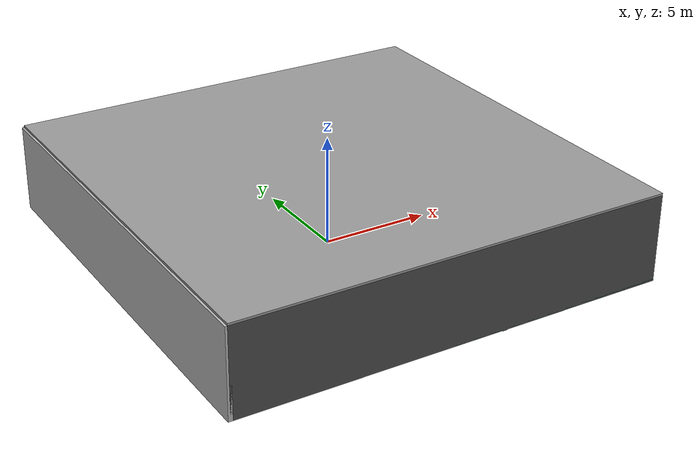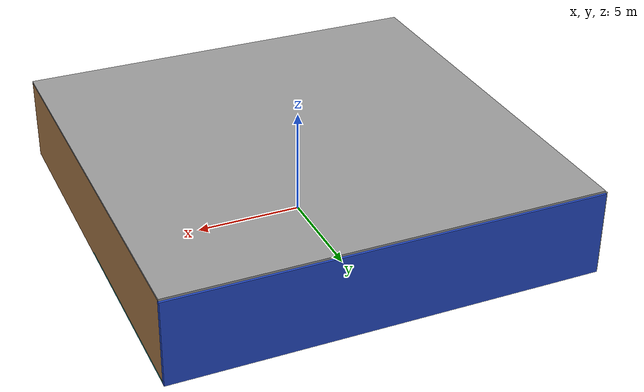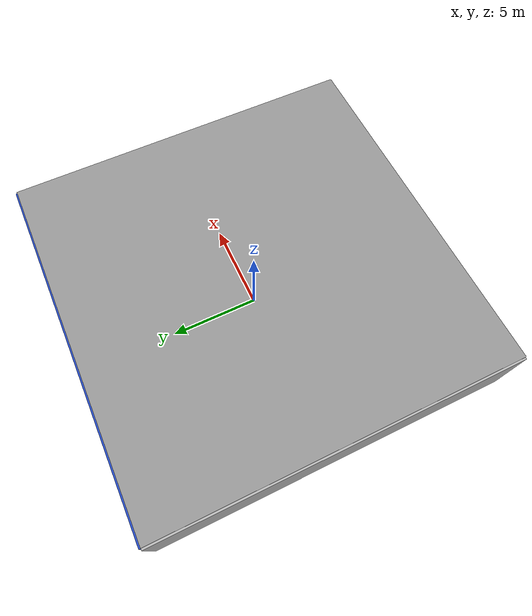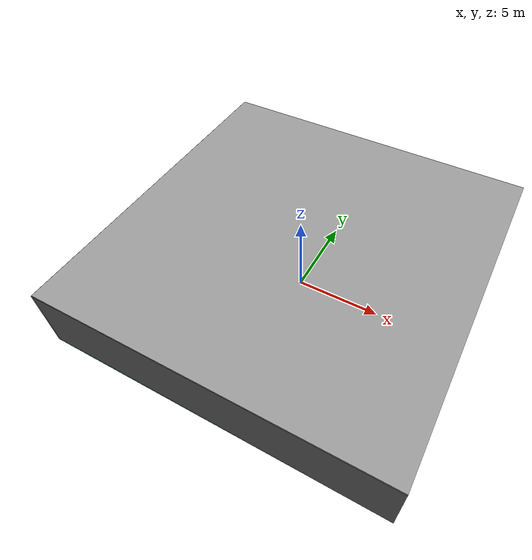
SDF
<sdf version="1.4">
 <world name="default">
  <physics type="ode">
   <max_step_size>0.001</max_step_size>
   <real_time_factor>1</real_time_factor>
   <real_time_update_rate>1000</real_time_update_rate>
   <gravity>0 0 -9.8</gravity>
  </physics>
  <scene><ambient>0.4 0.4 0.4 1</ambient><background>0.7 0.7 0.7 1</background><shadows>1</shadows></scene>
  <model name="Surrounding">
   <static>1</static>
   <link name="Ceiling">
    <collision name="Ceiling_Collision"><geometry><box><size>20 20 0.1</size></box></geometry></collision>
    <visual name="Ceiling_Visual">
     <geometry><box><size>20 20 0.1</size></box></geometry>
     <material>
      <script><uri>file://media/materials/scripts/gazebo.material</uri><name>Gazebo/GreyGradientSky</name></script>
     </material>
    </visual>
    <pose>0 0 4.05 0 0 0</pose>
   </link>
   <link name="Wall_South">
    <collision name="Wall_South_Collision">
     <geometry><box><size>20 0 4</size></box></geometry>
     <pose>0 0 2 0 -0 0</pose>
    </collision>
    <visual name="Wall_South_Visual">
     <pose>0 0 2 0 -0 0</pose>
     <geometry><box><size>20 0 4</size></box></geometry>
     <material>
      <script><uri>file://media/materials/scripts/gazebo.material</uri><name>Gazebo/Road</name></script>
     </material>
    </visual>
    <velocity_decay><linear>0</linear><angular>0</angular></velocity_decay>
    <pose>0 -10 0 0 -0 0</pose>
   </link>
   <link name="Wall_East">
    <collision name="Wall_21_Collision">
     <geometry><box><size>20 0 4</size></box></geometry>
     <pose>0 0 2 0 -0 0</pose>
    </collision>
    <visual name="Wall_21_Visual">
     <pose>0 0 2 0 -0 0</pose>
     <geometry><box><size>20 0 4</size></box></geometry>
     <material>
      <script><uri>file://media/materials/scripts/gazebo.material</uri><name>Gazebo/WoodFloor</name></script>
     </material>
    </visual>
    <velocity_decay><linear>0</linear><angular>0</angular></velocity_decay>
    <pose>10 0 0 0 -0 1.5708</pose>
   </link>
   <link name="Wall_North">
    <collision name="Wall_22_Collision">
     <geometry><box><size>20 0.2 4</size></box></geometry>
     <pose>0 0 2 0 -0 0</pose>
    </collision>
    <visual name="Wall_22_Visual">
     <pose>0 0 2 0 -0 0</pose>
     <geometry><box><size>20 0.2 4</size></box></geometry>
     <material>
      <script><uri>file://media/materials/scripts/gazebo.material</uri><name>Gazebo/BlueLaser</name></script>
     </material>
    </visual>
    <velocity_decay><linear>0</linear><angular>0</angular></velocity_decay>
    <pose>0 10 0 0 -0 0</pose>
   </link>
   <link name="Wall_West">
    <collision name="Wall_23_Collision">
     <geometry><box><size>20 0.2 4</size></box></geometry>
     <pose>0 0 2 0 -0 0</pose>
    </collision>
    <visual name="Wall_23_Visual">
     <pose>0 0 2 0 -0 0</pose>
     <geometry><box><size>20 0.2 4</size></box></geometry>
     <material>
      <script><uri>file://media/materials/scripts/gazebo.material</uri><name>Gazebo/LightOn</name></script>
     </material>
    </visual>
    <velocity_decay><linear>0</linear><angular>0</angular></velocity_decay>
    <pose>-10 0 0 0 0 -1.5708</pose>
   </link>
   <link name="Ground_link">
    <collision name="collision">
     <pose>0 0 .05 0 -0 0</pose>
     <geometry><box><size>20 20 0.1</size></box></geometry>
    </collision>
    <visual name="visual">
     <pose>0 0 .05 0 -0 0</pose>
     <geometry><box><size>20 20 0.1</size></box></geometry>
     <material>
      <script>
       <uri>file://media/materials/scripts/gazebo.material</uri>
       <name>Gazebo/TurquoiseGlowOutline</name>
      </script>
     </material>
    </visual>
   </link>
   <static>1</static>
  </model>
  <spherical_coordinates>
   <surface_model>EARTH_WGS84</surface_model>
   <latitude_deg>0</latitude_deg>
   <longitude_deg>0</longitude_deg>
   <elevation>0</elevation>
   <heading_deg>0</heading_deg>
  </spherical_coordinates>
  <light name="lightball_0" type="diffuse">
   <diffuse>0.8 0.8 0.8 1</diffuse>
   <specular>0.2 0.2 0.2 1</specular>
   <attenuation>
    <range>100</range>
    <constant>0.7</constant>
    <linear>0.01</linear>
    <quadratic>0.001</quadratic>
   </attenuation>
   <direction>-0.5 0.1 -0.9</direction>
   <pose>8.55789200658 -6.71943965495 2.8014322555 0 0 0</pose>
  </light>
  <light name="lightball_1" type="diffuse">
   <diffuse>0.8 0.8 0.8 1</diffuse>
   <specular>0.2 0.2 0.2 1</specular>
   <attenuation>
    <range>100</range>
    <constant>0.7</constant>
    <linear>0.01</linear>
    <quadratic>0.001</quadratic>
   </attenuation>
   <direction>-0.5 0.1 -0.9</direction>
   <pose>5.91047448529 -5.93332591308 0.960865421826 0 0 0</pose>
  </light>
  <light name="lightball_2" type="diffuse">
   <diffuse>0.8 0.8 0.8 1</diffuse>
   <specular>0.2 0.2 0.2 1</specular>
   <attenuation>
    <range>100</range>
    <constant>0.7</constant>
    <linear>0.01</linear>
    <quadratic>0.001</quadratic>
   </attenuation>
   <direction>-0.5 0.1 -0.9</direction>
   <pose>7.1742361776 -5.94210726335 0.572375367259 0 0 0</pose>
  </light>
  <include>
   <uri>model://construction_cone</uri>
   <pose>-1.45814287967 -1.49181833891 0 0 0 0.480075959744</pose>
  </include>
  <include>
   <uri>model://construction_cone</uri>
   <pose>-1.05991222461 0.731663091249 0 0 0 1.22346411803</pose>
  </include>
  <include>
   <uri>model://textured_shapes</uri>
   <pose>-0.749189207155 6.93232367546 0 0 0 0.798820897438</pose>
  </include>
  <include><uri>model://table</uri><pose>0.799823576034 4.15067367043 0 0 0 1.88171813076</pose></include>
  <include>
   <uri>model://textured_shapes</uri>
   <pose>3.70452350096 -7.73497629922 0 0 0 2.4581486309</pose>
  </include>
  <include><uri>model://cabinet</uri><pose>7.16528273229 -7.64009812014 0 0 0 2.47630329933</pose></include>
  <include>
   <uri>model://textured_shapes</uri>
   <pose>6.7925638664 -5.5765897723 0 0 0 1.65709154656</pose>
  </include>
  <include>
   <uri>model://construction_cone</uri>
   <pose>6.75627538267 -0.643721537613 0 0 0 2.07527151901</pose>
  </include>
 </world>
</sdf>

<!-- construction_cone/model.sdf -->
<sdf version="1.5">
  <model name="Construction Cone">
    <link name="link">
      <collision name="collision">
        <geometry>
          <mesh>
            <scale>10 10 10</scale>
            <uri>file://isr-testbed/construction_cone/meshes/construction_cone.dae</uri>
          </mesh>
        </geometry>
      </collision>
      <visual name="visual">
        <geometry>
          <mesh>
            <scale>10 10 10</scale>
            <uri>file://isr-testbed/construction_cone/meshes/construction_cone.dae</uri>
          </mesh>
        </geometry>
      </visual>
    </link>
  </model>
</sdf>

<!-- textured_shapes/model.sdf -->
<sdf version="1.6">
  <model name="textured_shapes">
    <pose>0 0 0.5 0 0 0</pose>
    <link name="box">
      <pose>0 -1.5 0 0 0 0</pose>
      <collision name="collision">
        <geometry>
          <box>
            <size>1 1 1</size>
          </box>
        </geometry>
      </collision>
      <visual name="visual">
        <geometry>
          <box>
            <size>1 1 1</size>
          </box>
        </geometry>
        <material>
          <script>
            <uri>model://../model_source/models/textured_shapes/materials/scripts</uri>
            <uri>model://../model_source/models/textured_shapes/materials/textures</uri>
            <name>TexturedShape/Squares</name>
          </script>
        </material>
      </visual>
    </link>
    <link name="sphere">
      <collision name="collision">
        <geometry>
          <sphere>
            <radius>0.5</radius>
          </sphere>
        </geometry>
      </collision>
      <visual name="visual">
        <geometry>
          <sphere>
            <radius>0.5</radius>
          </sphere>
        </geometry>
        <material>
          <script>
            <uri>model://../model_source/models/textured_shapes/materials/scripts</uri>
            <uri>model://../model_source/models/textured_shapes/materials/textures</uri>
            <name>TexturedShape/Squares</name>
          </script>
        </material>
      </visual>
    </link>
    <link name="cylinder">
      <pose>0 1.5 0 0 0 0</pose>
      <collision name="collision">
        <geometry>
          <cylinder>
            <radius>0.5</radius>
            <length>1</length>
          </cylinder>
        </geometry>
      </collision>
      <visual name="visual">
        <geometry>
          <cylinder>
            <radius>0.5</radius>
            <length>1</length>
          </cylinder>
        </geometry>
        <material>
          <script>
            <uri>model://../model_source/models/textured_shapes/materials/scripts</uri>
            <uri>model://../model_source/models/textured_shapes/materials/textures</uri>
            <name>TexturedShape/Squares</name>
          </script>
        </material>
      </visual>
    </link>
  </model>
</sdf>

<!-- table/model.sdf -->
<sdf version="1.5">
  <model name="table">
    <static>true</static>
    <link name="link">
      <collision name="surface">
        <pose>0 0 1.0 0 0 0</pose>
        <geometry>
          <box>
            <size>1.5 0.8 0.03</size>
          </box>
        </geometry>
        <surface>
          <friction>
            <ode>
              <mu>0.6</mu>
              <mu2>0.6</mu2>
            </ode>
          </friction>
        </surface>
      </collision>
      <visual name="visual1">
        <pose>0 0 1.0 0 0 0</pose>
        <geometry>
          <box>
            <size>1.5 0.8 0.03</size>
          </box>
        </geometry>
        <material>
          <script>
            <uri>model://media/materials/scripts/gazebo.material</uri>
            <name>Gazebo/Wood</name>
          </script>
        </material>
      </visual>
      <collision name="front_left_leg">
        <pose>0.68 0.38 0.5 0 0 0</pose>
        <geometry>
          <cylinder>
            <radius>0.02</radius>
            <length>1.0</length>
          </cylinder>
        </geometry>
      </collision>
      <visual name="front_left_leg">
        <pose>0.68 0.38 0.5 0 0 0</pose>
        <geometry>
          <cylinder>
            <radius>0.02</radius>
            <length>1.0</length>
          </cylinder>
        </geometry>
        <material>
          <script>
            <uri>model://media/materials/scripts/gazebo.material</uri>
            <name>Gazebo/Grey</name>
          </script>
        </material>
      </visual>
      <collision name="front_right_leg">
        <pose>0.68 -0.38 0.5 0 0 0</pose>
        <geometry>
          <cylinder>
            <radius>0.02</radius>
            <length>1.0</length>
          </cylinder>
        </geometry>
      </collision>
      <visual name="front_right_leg">
        <pose>0.68 -0.38 0.5 0 0 0</pose>
        <geometry>
          <cylinder>
            <radius>0.02</radius>
            <length>1.0</length>
          </cylinder>
        </geometry>
        <material>
          <script>
            <uri>model://media/materials/scripts/gazebo.material</uri>
            <name>Gazebo/Grey</name>
          </script>
        </material>
      </visual>
      <collision name="back_right_leg">
        <pose>-0.68 -0.38 0.5 0 0 0</pose>
        <geometry>
          <cylinder>
            <radius>0.02</radius>
            <length>1.0</length>
          </cylinder>
        </geometry>
      </collision>
      <visual name="back_right_leg">
        <pose>-0.68 -0.38 0.5 0 0 0</pose>
        <geometry>
          <cylinder>
            <radius>0.02</radius>
            <length>1.0</length>
          </cylinder>
        </geometry>
        <material>
          <script>
            <uri>model://media/materials/scripts/gazebo.material</uri>
            <name>Gazebo/Grey</name>
          </script>
        </material>
      </visual>
      <collision name="back_left_leg">
        <pose>-0.68 0.38 0.5 0 0 0</pose>
        <geometry>
          <cylinder>
            <radius>0.02</radius>
            <length>1.0</length>
          </cylinder>
        </geometry>
      </collision>
      <visual name="back_left_leg">
        <pose>-0.68 0.38 0.5 0 0 0</pose>
        <geometry>
          <cylinder>
            <radius>0.02</radius>
            <length>1.0</length>
          </cylinder>
        </geometry>
        <material>
          <script>
            <uri>model://media/materials/scripts/gazebo.material</uri>
            <name>Gazebo/Grey</name>
          </script>
        </material>
      </visual>
    </link>
  </model>
</sdf>

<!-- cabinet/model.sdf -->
<sdf version="1.5">
  <model name="cabinet">
    <static>true</static>
    <link name="cabinet_bottom_plate">
      <inertial>
        <pose>0 0 -1 0 0 0</pose>
        <inertia>
          <ixx>2.050000</ixx>
          <ixy>0</ixy>
          <ixz>0</ixz>
          <iyy>2.050000</iyy>
          <iyz>0</iyz>
          <izz>2.050000</izz>
        </inertia>
        <mass>25.000000</mass>
      </inertial>
      <collision name="cabinet_bottom_plate_geom">
        <pose>0 0 0.010000 0 0 0</pose>
        <geometry>
          <box>
            <size>0.450000 0.450000 0.020000</size>
          </box>
        </geometry>
      </collision>
      <visual name="cabinet_bottom_plate_geom_visual">
        <pose>0 0 0.010000 0 0 0</pose>
        <geometry>
          <box>
            <size>0.450000 0.450000 0.020000</size>
          </box>
        </geometry>
        <material>
          <script>
            <uri>model://media/materials/scripts/gazebo.material</uri>
            <name>Gazebo/Wood</name>
          </script>
        </material>
      </visual>
      <collision name="cabinet_bottom_plate_geom_cabinet_back_plate">
        <pose>0.235000 0 0.510000 0 0 0</pose>
        <geometry>
          <box>
            <size>0.020000 0.450000 1.020000</size>
          </box>
        </geometry>
      </collision>
      <visual name="cabinet_bottom_plate_geom_cabinet_back_plate_visual">
        <pose>0.235000 0 0.510000 0 0 0</pose>
        <geometry>
          <box>
            <size>0.020000 0.450000 1.020000</size>
          </box>
        </geometry>
        <material>
          <script>
            <uri>model://media/materials/scripts/gazebo.material</uri>
            <name>Gazebo/Wood</name>
          </script>
        </material>
      </visual>
      <collision name="cabinet_bottom_plate_geom_cabinet_left_plate">
        <pose>0 0.235000 0.510000 0 0 0</pose>
        <geometry>
          <box>
            <size>0.450000 0.020000 1.020000</size>
          </box>
        </geometry>
      </collision>
      <visual name="cabinet_bottom_plate_geom_cabinet_left_plate_visual">
        <pose>0 0.235000 0.510000 0 0 0</pose>
        <geometry>
          <box>
            <size>0.450000 0.020000 1.020000</size>
          </box>
        </geometry>
        <material>
          <script>
            <uri>model://media/materials/scripts/gazebo.material</uri>
            <name>Gazebo/Wood</name>
          </script>
        </material>
      </visual>
      <collision name="cabinet_bottom_plate_geom_cabinet_middle_plate">
        <pose>0 0 0.510000 0 0 0</pose>
        <geometry>
          <box>
            <size>0.450000 0.450000 0.020000</size>
          </box>
        </geometry>
      </collision>
      <visual name="cabinet_bottom_plate_geom_cabinet_middle_plate_visual">
        <pose>0 0 0.510000 0 0 0</pose>
        <geometry>
          <box>
            <size>0.450000 0.450000 0.020000</size>
          </box>
        </geometry>
        <material>
          <script>
            <uri>model://media/materials/scripts/gazebo.material</uri>
            <name>Gazebo/Wood</name>
          </script>
        </material>
      </visual>
      <collision name="cabinet_bottom_plate_geom_cabinet_right_plate">
        <pose>0 -0.235000 0.510000 0 0 0</pose>
        <geometry>
          <box>
            <size>0.450000 0.020000 1.020000</size>
          </box>
        </geometry>
      </collision>
      <visual name="cabinet_bottom_plate_geom_cabinet_right_plate_visual">
        <pose>0 -0.235000 0.510000 0 0 0</pose>
        <geometry>
          <box>
            <size>0.450000 0.020000 1.020000</size>
          </box>
        </geometry>
        <material>
          <script>
            <uri>model://media/materials/scripts/gazebo.material</uri>
            <name>Gazebo/Wood</name>
          </script>
        </material>
      </visual>
      <collision name="cabinet_bottom_plate_geom_cabinet_top_plate">
        <pose>0 0 1.010000 0 0 0</pose>
        <geometry>
          <box>
            <size>0.450000 0.450000 0.020000</size>
          </box>
        </geometry>
      </collision>
      <visual name="cabinet_bottom_plate_geom_cabinet_top_plate_visual">
        <pose>0 0 1.010000 0 0 0</pose>
        <geometry>
          <box>
            <size>0.450000 0.450000 0.020000</size>
          </box>
        </geometry>
        <material>
          <script>
            <uri>model://media/materials/scripts/gazebo.material</uri>
            <name>Gazebo/Wood</name>
          </script>
        </material>
      </visual>
    </link>
  </model>
</sdf>
